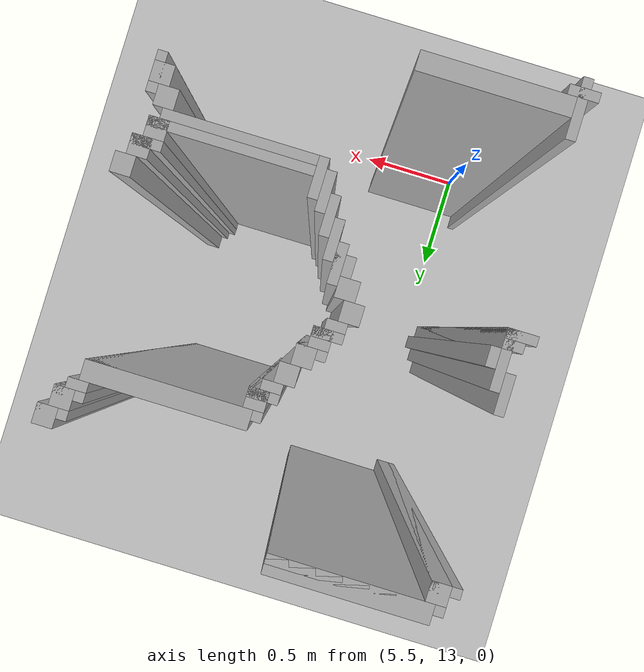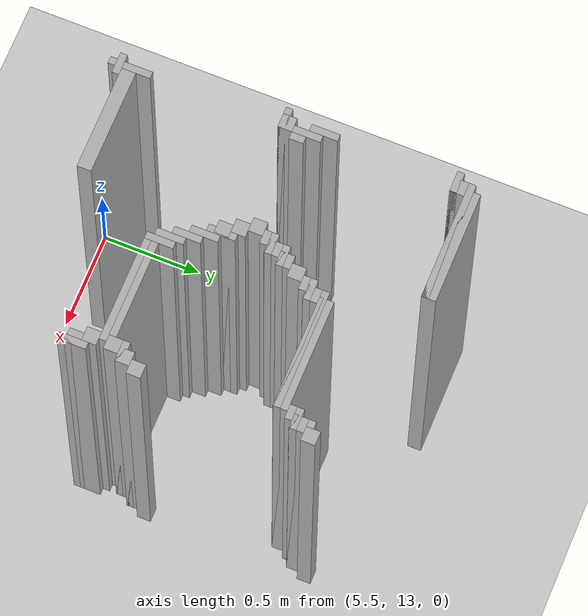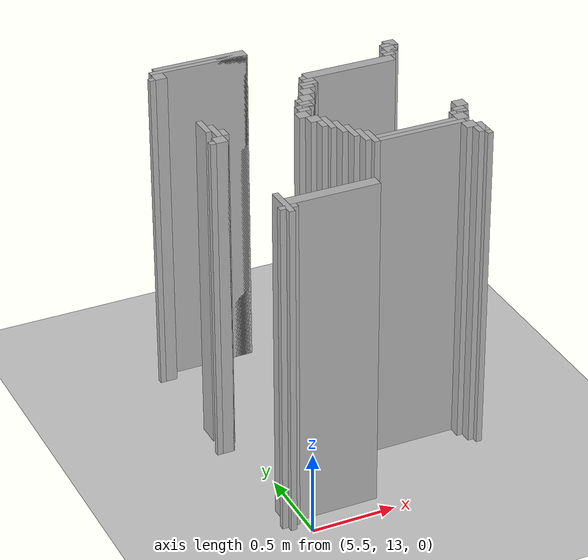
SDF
<sdf version="1.6">
 <world name="slam_world">
  <model name="ground_plane">
   <static>true</static>
   <link name="link">
    <collision name="collision">
     <geometry><plane><normal>0 0 1</normal><size>100 100</size></plane></geometry>
    </collision>
    <visual name="visual">
     <geometry><plane><normal>0 0 1</normal><size>100 100</size></plane></geometry>
     <material>
      <ambient>0.8 0.8 0.8 1</ambient>
      <diffuse>0.8 0.8 0.8 1</diffuse>
      <specular>0.8 0.8 0.8 1</specular>
     </material>
    </visual>
   </link>
  </model>
  <model name="wall_848">
   <static>true</static>
   <pose>5.672853828306264 14.825986078886311 1.0 0 0 0</pose>
   <link name="link">
    <collision name="collision">
     <geometry><box><size>0.5568445475638051 0.06960556844547564 2.0</size></box></geometry>
    </collision>
    <visual name="visual">
     <geometry><box><size>0.5568445475638051 0.06960556844547564 2.0</size></box></geometry>
     <material><ambient>0.5 0.5 0.5 1</ambient><diffuse>0.7 0.7 0.7 1</diffuse></material>
    </visual>
   </link>
  </model>
  <model name="wall_860">
   <static>true</static>
   <pose>5.655452436194896 14.80858468677494 1.0 0 0 0</pose>
   <link name="link">
    <collision name="collision">
     <geometry><box><size>0.5916473317865429 0.03480278422273782 2.0</size></box></geometry>
    </collision>
    <visual name="visual">
     <geometry><box><size>0.5916473317865429 0.03480278422273782 2.0</size></box></geometry>
     <material><ambient>0.5 0.5 0.5 1</ambient><diffuse>0.7 0.7 0.7 1</diffuse></material>
    </visual>
   </link>
  </model>
  <model name="wall_871">
   <static>true</static>
   <pose>5.3944315545243615 14.756380510440835 1.0 0 0 0</pose>
   <link name="link">
    <collision name="collision">
     <geometry><box><size>0.06960556844547564 0.06960556844547564 2.0</size></box></geometry>
    </collision>
    <visual name="visual">
     <geometry><box><size>0.06960556844547564 0.06960556844547564 2.0</size></box></geometry>
     <material><ambient>0.5 0.5 0.5 1</ambient><diffuse>0.7 0.7 0.7 1</diffuse></material>
    </visual>
   </link>
  </model>
  <model name="wall_883">
   <static>true</static>
   <pose>5.377030162412993 14.738979118329466 1.0 0 0 0</pose>
   <link name="link">
    <collision name="collision">
     <geometry><box><size>0.10440835266821345 0.03480278422273782 2.0</size></box></geometry>
    </collision>
    <visual name="visual">
     <geometry><box><size>0.10440835266821345 0.03480278422273782 2.0</size></box></geometry>
     <material><ambient>0.5 0.5 0.5 1</ambient><diffuse>0.7 0.7 0.7 1</diffuse></material>
    </visual>
   </link>
  </model>
  <model name="wall_916">
   <static>true</static>
   <pose>6.751740139211137 14.582366589327146 1.0 0 0 0</pose>
   <link name="link">
    <collision name="collision">
     <geometry><box><size>0.06960556844547564 0.06960556844547564 2.0</size></box></geometry>
    </collision>
    <visual name="visual">
     <geometry><box><size>0.06960556844547564 0.06960556844547564 2.0</size></box></geometry>
     <material><ambient>0.5 0.5 0.5 1</ambient><diffuse>0.7 0.7 0.7 1</diffuse></material>
    </visual>
   </link>
  </model>
  <model name="wall_928">
   <static>true</static>
   <pose>6.734338747099768 14.564965197215777 1.0 0 0 0</pose>
   <link name="link">
    <collision name="collision">
     <geometry><box><size>0.10440835266821345 0.03480278422273782 2.0</size></box></geometry>
    </collision>
    <visual name="visual">
     <geometry><box><size>0.10440835266821345 0.03480278422273782 2.0</size></box></geometry>
     <material><ambient>0.5 0.5 0.5 1</ambient><diffuse>0.7 0.7 0.7 1</diffuse></material>
    </visual>
   </link>
  </model>
  <model name="wall_938">
   <static>true</static>
   <pose>6.716937354988398 14.512761020881669 1.0 0 0 0</pose>
   <link name="link">
    <collision name="collision">
     <geometry><box><size>0.06960556844547564 0.06960556844547564 2.0</size></box></geometry>
    </collision>
    <visual name="visual">
     <geometry><box><size>0.06960556844547564 0.06960556844547564 2.0</size></box></geometry>
     <material><ambient>0.5 0.5 0.5 1</ambient><diffuse>0.7 0.7 0.7 1</diffuse></material>
    </visual>
   </link>
  </model>
  <model name="wall_947">
   <static>true</static>
   <pose>6.69953596287703 14.4953596287703 1.0 0 0 0</pose>
   <link name="link">
    <collision name="collision">
     <geometry><box><size>0.10440835266821345 0.03480278422273782 2.0</size></box></geometry>
    </collision>
    <visual name="visual">
     <geometry><box><size>0.10440835266821345 0.03480278422273782 2.0</size></box></geometry>
     <material><ambient>0.5 0.5 0.5 1</ambient><diffuse>0.7 0.7 0.7 1</diffuse></material>
    </visual>
   </link>
  </model>
  <model name="wall_957">
   <static>true</static>
   <pose>6.682134570765661 14.460556844547563 1.0 0 0 0</pose>
   <link name="link">
    <collision name="collision">
     <geometry><box><size>0.06960556844547564 0.03480278422273782 2.0</size></box></geometry>
    </collision>
    <visual name="visual">
     <geometry><box><size>0.06960556844547564 0.03480278422273782 2.0</size></box></geometry>
     <material><ambient>0.5 0.5 0.5 1</ambient><diffuse>0.7 0.7 0.7 1</diffuse></material>
    </visual>
   </link>
  </model>
  <model name="wall_968">
   <static>true</static>
   <pose>6.403712296983758 14.408352668213457 1.0 0 0 0</pose>
   <link name="link">
    <collision name="collision">
     <geometry><box><size>0.5568445475638051 0.06960556844547564 2.0</size></box></geometry>
    </collision>
    <visual name="visual">
     <geometry><box><size>0.5568445475638051 0.06960556844547564 2.0</size></box></geometry>
     <material><ambient>0.5 0.5 0.5 1</ambient><diffuse>0.7 0.7 0.7 1</diffuse></material>
    </visual>
   </link>
  </model>
  <model name="wall_982">
   <static>true</static>
   <pose>6.386310904872389 14.390951276102088 1.0 0 0 0</pose>
   <link name="link">
    <collision name="collision">
     <geometry><box><size>0.5916473317865429 0.03480278422273782 2.0</size></box></geometry>
    </collision>
    <visual name="visual">
     <geometry><box><size>0.5916473317865429 0.03480278422273782 2.0</size></box></geometry>
     <material><ambient>0.5 0.5 0.5 1</ambient><diffuse>0.7 0.7 0.7 1</diffuse></material>
    </visual>
   </link>
  </model>
  <model name="wall_997">
   <static>true</static>
   <pose>6.125290023201856 14.33874709976798 1.0 0 0 0</pose>
   <link name="link">
    <collision name="collision">
     <geometry><box><size>0.06960556844547564 0.06960556844547564 2.0</size></box></geometry>
    </collision>
    <visual name="visual">
     <geometry><box><size>0.06960556844547564 0.06960556844547564 2.0</size></box></geometry>
     <material><ambient>0.5 0.5 0.5 1</ambient><diffuse>0.7 0.7 0.7 1</diffuse></material>
    </visual>
   </link>
  </model>
  <model name="wall_1012">
   <static>true</static>
   <pose>6.107888631090487 14.321345707656612 1.0 0 0 0</pose>
   <link name="link">
    <collision name="collision">
     <geometry><box><size>0.10440835266821345 0.03480278422273782 2.0</size></box></geometry>
    </collision>
    <visual name="visual">
     <geometry><box><size>0.10440835266821345 0.03480278422273782 2.0</size></box></geometry>
     <material><ambient>0.5 0.5 0.5 1</ambient><diffuse>0.7 0.7 0.7 1</diffuse></material>
    </visual>
   </link>
  </model>
  <model name="wall_1025">
   <static>true</static>
   <pose>6.090487238979118 14.286542923433874 1.0 0 0 0</pose>
   <link name="link">
    <collision name="collision">
     <geometry><box><size>0.06960556844547564 0.03480278422273782 2.0</size></box></geometry>
    </collision>
    <visual name="visual">
     <geometry><box><size>0.06960556844547564 0.03480278422273782 2.0</size></box></geometry>
     <material><ambient>0.5 0.5 0.5 1</ambient><diffuse>0.7 0.7 0.7 1</diffuse></material>
    </visual>
   </link>
  </model>
  <model name="wall_1036">
   <static>true</static>
   <pose>6.05568445475638 14.234338747099768 1.0 0 0 0</pose>
   <link name="link">
    <collision name="collision">
     <geometry><box><size>0.06960556844547564 0.06960556844547564 2.0</size></box></geometry>
    </collision>
    <visual name="visual">
     <geometry><box><size>0.06960556844547564 0.06960556844547564 2.0</size></box></geometry>
     <material><ambient>0.5 0.5 0.5 1</ambient><diffuse>0.7 0.7 0.7 1</diffuse></material>
    </visual>
   </link>
  </model>
  <model name="wall_1051">
   <static>true</static>
   <pose>6.020881670533642 14.164733178654291 1.0 0 0 0</pose>
   <link name="link">
    <collision name="collision">
     <geometry><box><size>0.06960556844547564 0.06960556844547564 2.0</size></box></geometry>
    </collision>
    <visual name="visual">
     <geometry><box><size>0.06960556844547564 0.06960556844547564 2.0</size></box></geometry>
     <material><ambient>0.5 0.5 0.5 1</ambient><diffuse>0.7 0.7 0.7 1</diffuse></material>
    </visual>
   </link>
  </model>
  <model name="wall_1065">
   <static>true</static>
   <pose>5.377030162412993 14.095127610208817 1.0 0 0 0</pose>
   <link name="link">
    <collision name="collision">
     <geometry><box><size>0.03480278422273782 0.13921113689095127 2.0</size></box></geometry>
    </collision>
    <visual name="visual">
     <geometry><box><size>0.03480278422273782 0.13921113689095127 2.0</size></box></geometry>
     <material><ambient>0.5 0.5 0.5 1</ambient><diffuse>0.7 0.7 0.7 1</diffuse></material>
    </visual>
   </link>
  </model>
  <model name="wall_1066">
   <static>true</static>
   <pose>6.003480278422273 14.147331786542923 1.0 0 0 0</pose>
   <link name="link">
    <collision name="collision">
     <geometry><box><size>0.10440835266821345 0.03480278422273782 2.0</size></box></geometry>
    </collision>
    <visual name="visual">
     <geometry><box><size>0.10440835266821345 0.03480278422273782 2.0</size></box></geometry>
     <material><ambient>0.5 0.5 0.5 1</ambient><diffuse>0.7 0.7 0.7 1</diffuse></material>
    </visual>
   </link>
  </model>
  <model name="wall_1078">
   <static>true</static>
   <pose>5.986078886310905 14.095127610208817 1.0 0 0 0</pose>
   <link name="link">
    <collision name="collision">
     <geometry><box><size>0.06960556844547564 0.06960556844547564 2.0</size></box></geometry>
    </collision>
    <visual name="visual">
     <geometry><box><size>0.06960556844547564 0.06960556844547564 2.0</size></box></geometry>
     <material><ambient>0.5 0.5 0.5 1</ambient><diffuse>0.7 0.7 0.7 1</diffuse></material>
    </visual>
   </link>
  </model>
  <model name="wall_1088">
   <static>true</static>
   <pose>5.41183294663573 13.990719257540603 1.0 0 0 0</pose>
   <link name="link">
    <collision name="collision">
     <geometry><box><size>0.03480278422273782 0.2088167053364269 2.0</size></box></geometry>
    </collision>
    <visual name="visual">
     <geometry><box><size>0.03480278422273782 0.2088167053364269 2.0</size></box></geometry>
     <material><ambient>0.5 0.5 0.5 1</ambient><diffuse>0.7 0.7 0.7 1</diffuse></material>
    </visual>
   </link>
  </model>
  <model name="wall_1089">
   <static>true</static>
   <pose>5.968677494199536 14.077726218097448 1.0 0 0 0</pose>
   <link name="link">
    <collision name="collision">
     <geometry><box><size>0.10440835266821345 0.03480278422273782 2.0</size></box></geometry>
    </collision>
    <visual name="visual">
     <geometry><box><size>0.10440835266821345 0.03480278422273782 2.0</size></box></geometry>
     <material><ambient>0.5 0.5 0.5 1</ambient><diffuse>0.7 0.7 0.7 1</diffuse></material>
    </visual>
   </link>
  </model>
  <model name="wall_1101">
   <static>true</static>
   <pose>5.951276102088166 14.042923433874709 1.0 0 0 0</pose>
   <link name="link">
    <collision name="collision">
     <geometry><box><size>0.06960556844547564 0.03480278422273782 2.0</size></box></geometry>
    </collision>
    <visual name="visual">
     <geometry><box><size>0.06960556844547564 0.03480278422273782 2.0</size></box></geometry>
     <material><ambient>0.5 0.5 0.5 1</ambient><diffuse>0.7 0.7 0.7 1</diffuse></material>
    </visual>
   </link>
  </model>
  <model name="wall_1110">
   <static>true</static>
   <pose>5.4466357308584685 13.990719257540603 1.0 0 0 0</pose>
   <link name="link">
    <collision name="collision">
     <geometry><box><size>0.03480278422273782 0.06960556844547564 2.0</size></box></geometry>
    </collision>
    <visual name="visual">
     <geometry><box><size>0.03480278422273782 0.06960556844547564 2.0</size></box></geometry>
     <material><ambient>0.5 0.5 0.5 1</ambient><diffuse>0.7 0.7 0.7 1</diffuse></material>
    </visual>
   </link>
  </model>
  <model name="wall_1111">
   <static>true</static>
   <pose>5.916473317865429 13.990719257540603 1.0 0 0 0</pose>
   <link name="link">
    <collision name="collision">
     <geometry><box><size>0.06960556844547564 0.06960556844547564 2.0</size></box></geometry>
    </collision>
    <visual name="visual">
     <geometry><box><size>0.06960556844547564 0.06960556844547564 2.0</size></box></geometry>
     <material><ambient>0.5 0.5 0.5 1</ambient><diffuse>0.7 0.7 0.7 1</diffuse></material>
    </visual>
   </link>
  </model>
  <model name="wall_1124">
   <static>true</static>
   <pose>5.3944315545243615 13.921113689095128 1.0 0 0 0</pose>
   <link name="link">
    <collision name="collision">
     <geometry><box><size>0.06960556844547564 0.06960556844547564 2.0</size></box></geometry>
    </collision>
    <visual name="visual">
     <geometry><box><size>0.06960556844547564 0.06960556844547564 2.0</size></box></geometry>
     <material><ambient>0.5 0.5 0.5 1</ambient><diffuse>0.7 0.7 0.7 1</diffuse></material>
    </visual>
   </link>
  </model>
  <model name="wall_1125">
   <static>true</static>
   <pose>5.951276102088166 13.921113689095128 1.0 0 0 0</pose>
   <link name="link">
    <collision name="collision">
     <geometry><box><size>0.06960556844547564 0.06960556844547564 2.0</size></box></geometry>
    </collision>
    <visual name="visual">
     <geometry><box><size>0.06960556844547564 0.06960556844547564 2.0</size></box></geometry>
     <material><ambient>0.5 0.5 0.5 1</ambient><diffuse>0.7 0.7 0.7 1</diffuse></material>
    </visual>
   </link>
  </model>
  <model name="wall_1139">
   <static>true</static>
   <pose>5.377030162412993 13.903712296983759 1.0 0 0 0</pose>
   <link name="link">
    <collision name="collision">
     <geometry><box><size>0.10440835266821345 0.03480278422273782 2.0</size></box></geometry>
    </collision>
    <visual name="visual">
     <geometry><box><size>0.10440835266821345 0.03480278422273782 2.0</size></box></geometry>
     <material><ambient>0.5 0.5 0.5 1</ambient><diffuse>0.7 0.7 0.7 1</diffuse></material>
    </visual>
   </link>
  </model>
  <model name="wall_1140">
   <static>true</static>
   <pose>6.003480278422273 13.851508120649651 1.0 0 0 0</pose>
   <link name="link">
    <collision name="collision">
     <geometry><box><size>0.03480278422273782 0.13921113689095127 2.0</size></box></geometry>
    </collision>
    <visual name="visual">
     <geometry><box><size>0.03480278422273782 0.13921113689095127 2.0</size></box></geometry>
     <material><ambient>0.5 0.5 0.5 1</ambient><diffuse>0.7 0.7 0.7 1</diffuse></material>
    </visual>
   </link>
  </model>
  <model name="wall_1155">
   <static>true</static>
   <pose>5.986078886310905 13.851508120649651 1.0 0 0 0</pose>
   <link name="link">
    <collision name="collision">
     <geometry><box><size>0.06960556844547564 0.06960556844547564 2.0</size></box></geometry>
    </collision>
    <visual name="visual">
     <geometry><box><size>0.06960556844547564 0.06960556844547564 2.0</size></box></geometry>
     <material><ambient>0.5 0.5 0.5 1</ambient><diffuse>0.7 0.7 0.7 1</diffuse></material>
    </visual>
   </link>
  </model>
  <model name="wall_1170">
   <static>true</static>
   <pose>6.038283062645012 13.781902552204176 1.0 0 0 0</pose>
   <link name="link">
    <collision name="collision">
     <geometry><box><size>0.03480278422273782 0.13921113689095127 2.0</size></box></geometry>
    </collision>
    <visual name="visual">
     <geometry><box><size>0.03480278422273782 0.13921113689095127 2.0</size></box></geometry>
     <material><ambient>0.5 0.5 0.5 1</ambient><diffuse>0.7 0.7 0.7 1</diffuse></material>
    </visual>
   </link>
  </model>
  <model name="wall_1192">
   <static>true</static>
   <pose>6.073085846867749 13.7122969837587 1.0 0 0 0</pose>
   <link name="link">
    <collision name="collision">
     <geometry><box><size>0.03480278422273782 0.13921113689095127 2.0</size></box></geometry>
    </collision>
    <visual name="visual">
     <geometry><box><size>0.03480278422273782 0.13921113689095127 2.0</size></box></geometry>
     <material><ambient>0.5 0.5 0.5 1</ambient><diffuse>0.7 0.7 0.7 1</diffuse></material>
    </visual>
   </link>
  </model>
  <model name="wall_1193">
   <static>true</static>
   <pose>6.751740139211137 13.747099767981437 1.0 0 0 0</pose>
   <link name="link">
    <collision name="collision">
     <geometry><box><size>0.06960556844547564 0.06960556844547564 2.0</size></box></geometry>
    </collision>
    <visual name="visual">
     <geometry><box><size>0.06960556844547564 0.06960556844547564 2.0</size></box></geometry>
     <material><ambient>0.5 0.5 0.5 1</ambient><diffuse>0.7 0.7 0.7 1</diffuse></material>
    </visual>
   </link>
  </model>
  <model name="wall_1207">
   <static>true</static>
   <pose>6.107888631090487 13.642691415313225 1.0 0 0 0</pose>
   <link name="link">
    <collision name="collision">
     <geometry><box><size>0.03480278422273782 0.13921113689095127 2.0</size></box></geometry>
    </collision>
    <visual name="visual">
     <geometry><box><size>0.03480278422273782 0.13921113689095127 2.0</size></box></geometry>
     <material><ambient>0.5 0.5 0.5 1</ambient><diffuse>0.7 0.7 0.7 1</diffuse></material>
    </visual>
   </link>
  </model>
  <model name="wall_1208">
   <static>true</static>
   <pose>6.716937354988398 13.677494199535962 1.0 0 0 0</pose>
   <link name="link">
    <collision name="collision">
     <geometry><box><size>0.06960556844547564 0.06960556844547564 2.0</size></box></geometry>
    </collision>
    <visual name="visual">
     <geometry><box><size>0.06960556844547564 0.06960556844547564 2.0</size></box></geometry>
     <material><ambient>0.5 0.5 0.5 1</ambient><diffuse>0.7 0.7 0.7 1</diffuse></material>
    </visual>
   </link>
  </model>
  <model name="wall_1222">
   <static>true</static>
   <pose>6.142691415313225 13.607888631090487 1.0 0 0 0</pose>
   <link name="link">
    <collision name="collision">
     <geometry><box><size>0.03480278422273782 0.13921113689095127 2.0</size></box></geometry>
    </collision>
    <visual name="visual">
     <geometry><box><size>0.03480278422273782 0.13921113689095127 2.0</size></box></geometry>
     <material><ambient>0.5 0.5 0.5 1</ambient><diffuse>0.7 0.7 0.7 1</diffuse></material>
    </visual>
   </link>
  </model>
  <model name="wall_1223">
   <static>true</static>
   <pose>6.69953596287703 13.660092807424594 1.0 0 0 0</pose>
   <link name="link">
    <collision name="collision">
     <geometry><box><size>0.10440835266821345 0.03480278422273782 2.0</size></box></geometry>
    </collision>
    <visual name="visual">
     <geometry><box><size>0.10440835266821345 0.03480278422273782 2.0</size></box></geometry>
     <material><ambient>0.5 0.5 0.5 1</ambient><diffuse>0.7 0.7 0.7 1</diffuse></material>
    </visual>
   </link>
  </model>
  <model name="wall_1234">
   <static>true</static>
   <pose>6.682134570765661 13.607888631090487 1.0 0 0 0</pose>
   <link name="link">
    <collision name="collision">
     <geometry><box><size>0.06960556844547564 0.06960556844547564 2.0</size></box></geometry>
    </collision>
    <visual name="visual">
     <geometry><box><size>0.06960556844547564 0.06960556844547564 2.0</size></box></geometry>
     <material><ambient>0.5 0.5 0.5 1</ambient><diffuse>0.7 0.7 0.7 1</diffuse></material>
    </visual>
   </link>
  </model>
  <model name="wall_1244">
   <static>true</static>
   <pose>6.438515081206496 13.590487238979117 1.0 0 0 0</pose>
   <link name="link">
    <collision name="collision">
     <geometry><box><size>0.5568445475638051 0.03480278422273782 2.0</size></box></geometry>
    </collision>
    <visual name="visual">
     <geometry><box><size>0.5568445475638051 0.03480278422273782 2.0</size></box></geometry>
     <material><ambient>0.5 0.5 0.5 1</ambient><diffuse>0.7 0.7 0.7 1</diffuse></material>
    </visual>
   </link>
  </model>
  <model name="wall_1253">
   <static>true</static>
   <pose>6.421113689095128 13.55568445475638 1.0 0 0 0</pose>
   <link name="link">
    <collision name="collision">
     <geometry><box><size>0.5220417633410672 0.03480278422273782 2.0</size></box></geometry>
    </collision>
    <visual name="visual">
     <geometry><box><size>0.5220417633410672 0.03480278422273782 2.0</size></box></geometry>
     <material><ambient>0.5 0.5 0.5 1</ambient><diffuse>0.7 0.7 0.7 1</diffuse></material>
    </visual>
   </link>
  </model>
  <model name="wall_1264">
   <static>true</static>
   <pose>6.682134570765661 13.503480278422273 1.0 0 0 0</pose>
   <link name="link">
    <collision name="collision">
     <geometry><box><size>0.06960556844547564 0.06960556844547564 2.0</size></box></geometry>
    </collision>
    <visual name="visual">
     <geometry><box><size>0.06960556844547564 0.06960556844547564 2.0</size></box></geometry>
     <material><ambient>0.5 0.5 0.5 1</ambient><diffuse>0.7 0.7 0.7 1</diffuse></material>
    </visual>
   </link>
  </model>
  <model name="wall_1276">
   <static>true</static>
   <pose>6.734338747099768 13.433874709976797 1.0 0 0 0</pose>
   <link name="link">
    <collision name="collision">
     <geometry><box><size>0.03480278422273782 0.13921113689095127 2.0</size></box></geometry>
    </collision>
    <visual name="visual">
     <geometry><box><size>0.03480278422273782 0.13921113689095127 2.0</size></box></geometry>
     <material><ambient>0.5 0.5 0.5 1</ambient><diffuse>0.7 0.7 0.7 1</diffuse></material>
    </visual>
   </link>
  </model>
  <model name="wall_1288">
   <static>true</static>
   <pose>6.716937354988398 13.433874709976797 1.0 0 0 0</pose>
   <link name="link">
    <collision name="collision">
     <geometry><box><size>0.06960556844547564 0.06960556844547564 2.0</size></box></geometry>
    </collision>
    <visual name="visual">
     <geometry><box><size>0.06960556844547564 0.06960556844547564 2.0</size></box></geometry>
     <material><ambient>0.5 0.5 0.5 1</ambient><diffuse>0.7 0.7 0.7 1</diffuse></material>
    </visual>
   </link>
  </model>
  <model name="wall_1341">
   <static>true</static>
   <pose>5.41183294663573 13.155452436194896 1.0 0 0 0</pose>
   <link name="link">
    <collision name="collision">
     <geometry><box><size>0.03480278422273782 0.2088167053364269 2.0</size></box></geometry>
    </collision>
    <visual name="visual">
     <geometry><box><size>0.03480278422273782 0.2088167053364269 2.0</size></box></geometry>
     <material><ambient>0.5 0.5 0.5 1</ambient><diffuse>0.7 0.7 0.7 1</diffuse></material>
    </visual>
   </link>
  </model>
  <model name="wall_1358">
   <static>true</static>
   <pose>5.690255220417633 13.155452436194896 1.0 0 0 0</pose>
   <link name="link">
    <collision name="collision">
     <geometry><box><size>0.5220417633410672 0.06960556844547564 2.0</size></box></geometry>
    </collision>
    <visual name="visual">
     <geometry><box><size>0.5220417633410672 0.06960556844547564 2.0</size></box></geometry>
     <material><ambient>0.5 0.5 0.5 1</ambient><diffuse>0.7 0.7 0.7 1</diffuse></material>
    </visual>
   </link>
  </model>
  <model name="wall_1376">
   <static>true</static>
   <pose>5.41183294663573 13.103248259860788 1.0 0 0 0</pose>
   <link name="link">
    <collision name="collision">
     <geometry><box><size>0.10440835266821345 0.03480278422273782 2.0</size></box></geometry>
    </collision>
    <visual name="visual">
     <geometry><box><size>0.10440835266821345 0.03480278422273782 2.0</size></box></geometry>
     <material><ambient>0.5 0.5 0.5 1</ambient><diffuse>0.7 0.7 0.7 1</diffuse></material>
    </visual>
   </link>
  </model>
 </world>
</sdf>
